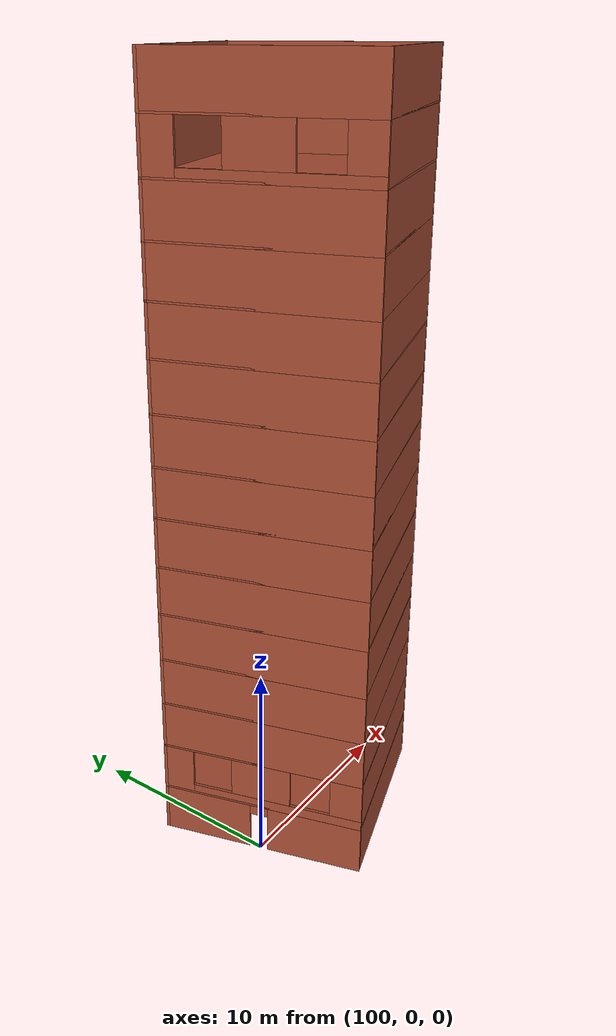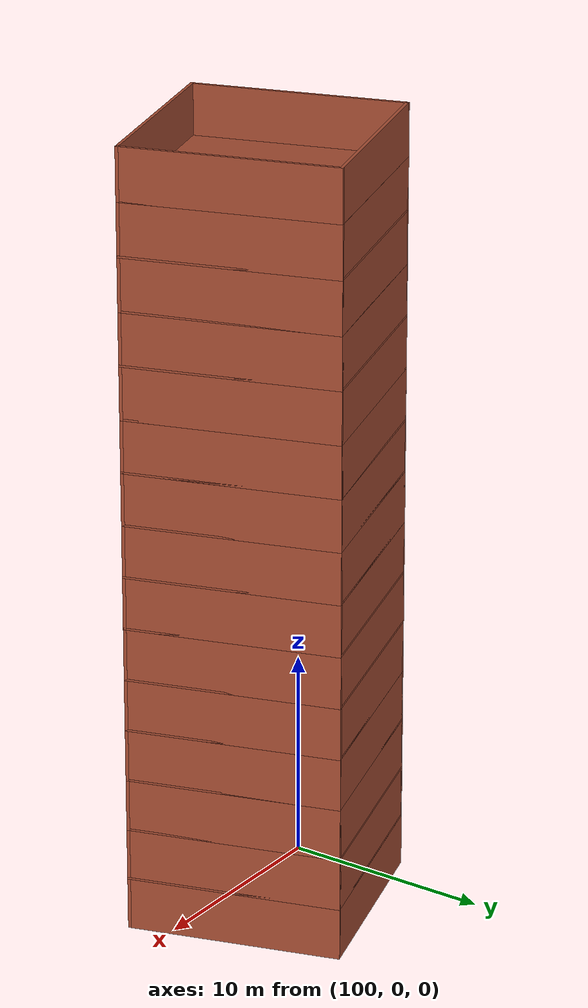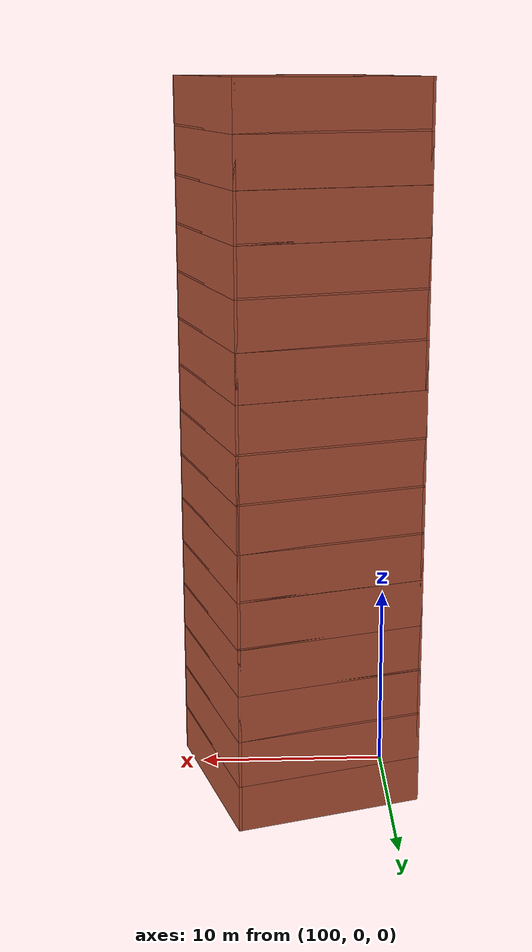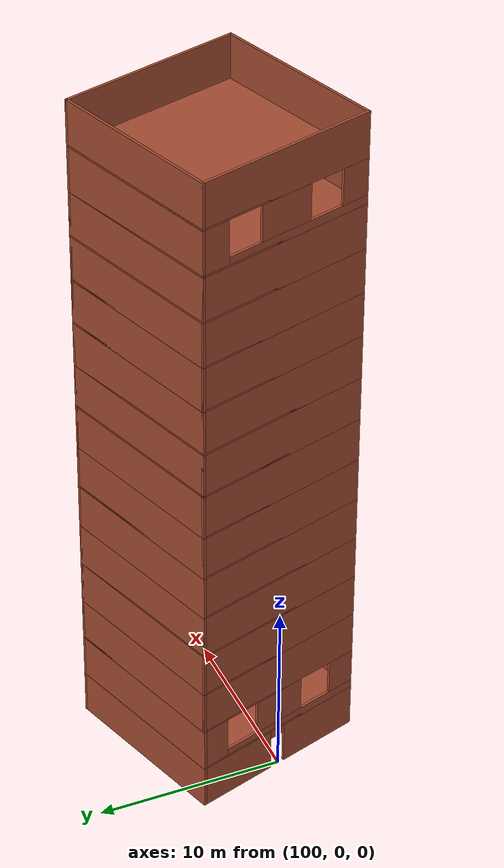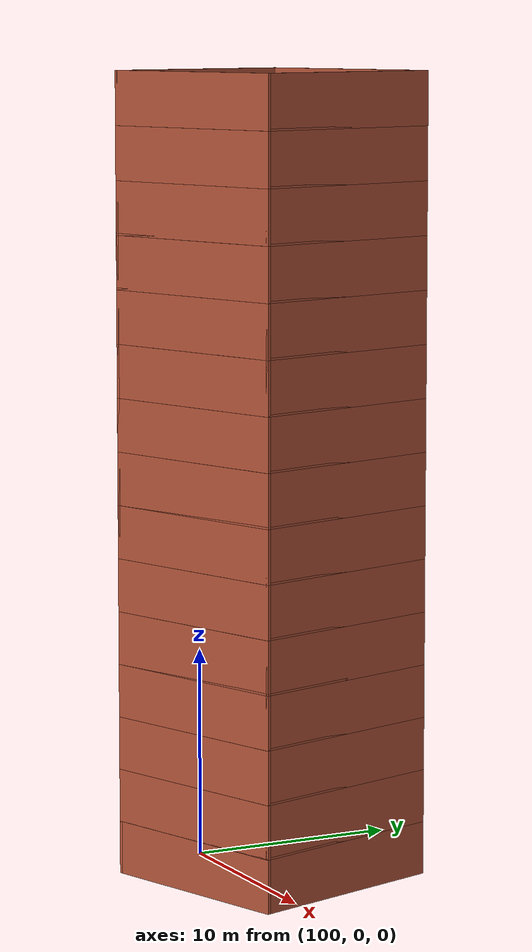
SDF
<?xml version='1.0'?>
<sdf version='1.7'>
  <model name='building_L14_w2x2_p10x5'>
    <pose>99.9625 0 0 0 0 0.3</pose>
    <link name='Floor_10'>
      <collision name='Floor_10_Collision'>
        <geometry>
          <box>
            <size>10 10.15 0.1</size>
          </box>
        </geometry>
        <pose>0 0 0.05 0 -0 0</pose>
      </collision>
      <visual name='Floor_10_Visual'>
        <pose>0 0 0.05 0 -0 0</pose>
        <geometry>
          <box>
            <size>10 10.15 0.1</size>
          </box>
        </geometry>
        <material>
          <script>
            <uri>file://media/materials/scripts/gazebo.material</uri>
            <name>Gazebo/Bricks</name>
          </script>
          <ambient>1 1 1 1</ambient>
        </material>
        <meta>
          <layer>2</layer>
        </meta>
      </visual>
      <pose>4.9625 0 5 0 -0 0</pose>
    </link>
    <link name='Floor_11'>
      <collision name='Floor_11_Collision'>
        <geometry>
          <box>
            <size>10 10.15 0.1</size>
          </box>
        </geometry>
        <pose>0 0 0.05 0 -0 0</pose>
      </collision>
      <visual name='Floor_11_Visual'>
        <pose>0 0 0.05 0 -0 0</pose>
        <geometry>
          <box>
            <size>10 10.15 0.1</size>
          </box>
        </geometry>
        <material>
          <script>
            <uri>file://media/materials/scripts/gazebo.material</uri>
            <name>Gazebo/Bricks</name>
          </script>
          <ambient>1 1 1 1</ambient>
        </material>
        <meta>
          <layer>3</layer>
        </meta>
      </visual>
      <pose>4.9625 0 7.5 0 -0 0</pose>
    </link>
    <link name='Floor_12'>
      <collision name='Floor_12_Collision'>
        <geometry>
          <box>
            <size>10 10.15 0.1</size>
          </box>
        </geometry>
        <pose>0 0 0.05 0 -0 0</pose>
      </collision>
      <visual name='Floor_12_Visual'>
        <pose>0 0 0.05 0 -0 0</pose>
        <geometry>
          <box>
            <size>10 10.15 0.1</size>
          </box>
        </geometry>
        <material>
          <script>
            <uri>file://media/materials/scripts/gazebo.material</uri>
            <name>Gazebo/Bricks</name>
          </script>
          <ambient>1 1 1 1</ambient>
        </material>
        <meta>
          <layer>4</layer>
        </meta>
      </visual>
      <pose>4.9625 0 10 0 -0 0</pose>
    </link>
    <link name='Floor_13'>
      <collision name='Floor_13_Collision'>
        <geometry>
          <box>
            <size>10 10.15 0.1</size>
          </box>
        </geometry>
        <pose>0 0 0.05 0 -0 0</pose>
      </collision>
      <visual name='Floor_13_Visual'>
        <pose>0 0 0.05 0 -0 0</pose>
        <geometry>
          <box>
            <size>10 10.15 0.1</size>
          </box>
        </geometry>
        <material>
          <script>
            <uri>file://media/materials/scripts/gazebo.material</uri>
            <name>Gazebo/Bricks</name>
          </script>
          <ambient>1 1 1 1</ambient>
        </material>
        <meta>
          <layer>5</layer>
        </meta>
      </visual>
      <pose>4.9625 0 12.5 0 -0 0</pose>
    </link>
    <link name='Floor_14'>
      <collision name='Floor_14_Collision'>
        <geometry>
          <box>
            <size>10 10.15 0.1</size>
          </box>
        </geometry>
        <pose>0 0 0.05 0 -0 0</pose>
      </collision>
      <visual name='Floor_14_Visual'>
        <pose>0 0 0.05 0 -0 0</pose>
        <geometry>
          <box>
            <size>10 10.15 0.1</size>
          </box>
        </geometry>
        <material>
          <script>
            <uri>file://media/materials/scripts/gazebo.material</uri>
            <name>Gazebo/Bricks</name>
          </script>
          <ambient>1 1 1 1</ambient>
        </material>
        <meta>
          <layer>6</layer>
        </meta>
      </visual>
      <pose>4.9625 0 15 0 -0 0</pose>
    </link>
    <link name='Floor_15'>
      <collision name='Floor_15_Collision'>
        <geometry>
          <box>
            <size>10 10.15 0.1</size>
          </box>
        </geometry>
        <pose>0 0 0.05 0 -0 0</pose>
      </collision>
      <visual name='Floor_15_Visual'>
        <pose>0 0 0.05 0 -0 0</pose>
        <geometry>
          <box>
            <size>10 10.15 0.1</size>
          </box>
        </geometry>
        <material>
          <script>
            <uri>file://media/materials/scripts/gazebo.material</uri>
            <name>Gazebo/Bricks</name>
          </script>
          <ambient>1 1 1 1</ambient>
        </material>
        <meta>
          <layer>7</layer>
        </meta>
      </visual>
      <pose>4.9625 0 17.5 0 -0 0</pose>
    </link>
    <link name='Floor_16'>
      <collision name='Floor_16_Collision'>
        <geometry>
          <box>
            <size>10 10.15 0.1</size>
          </box>
        </geometry>
        <pose>0 0 0.05 0 -0 0</pose>
      </collision>
      <visual name='Floor_16_Visual'>
        <pose>0 0 0.05 0 -0 0</pose>
        <geometry>
          <box>
            <size>10 10.15 0.1</size>
          </box>
        </geometry>
        <material>
          <script>
            <uri>file://media/materials/scripts/gazebo.material</uri>
            <name>Gazebo/Bricks</name>
          </script>
          <ambient>1 1 1 1</ambient>
        </material>
        <meta>
          <layer>8</layer>
        </meta>
      </visual>
      <pose>4.9625 0 20 0 -0 0</pose>
    </link>
    <link name='Floor_17'>
      <collision name='Floor_17_Collision'>
        <geometry>
          <box>
            <size>10 10.15 0.1</size>
          </box>
        </geometry>
        <pose>0 0 0.05 0 -0 0</pose>
      </collision>
      <visual name='Floor_17_Visual'>
        <pose>0 0 0.05 0 -0 0</pose>
        <geometry>
          <box>
            <size>10 10.15 0.1</size>
          </box>
        </geometry>
        <material>
          <script>
            <uri>file://media/materials/scripts/gazebo.material</uri>
            <name>Gazebo/Bricks</name>
          </script>
          <ambient>1 1 1 1</ambient>
        </material>
        <meta>
          <layer>9</layer>
        </meta>
      </visual>
      <pose>4.9625 0 22.5 0 -0 0</pose>
    </link>
    <link name='Floor_18'>
      <collision name='Floor_18_Collision'>
        <geometry>
          <box>
            <size>10 10.15 0.1</size>
          </box>
        </geometry>
        <pose>0 0 0.05 0 -0 0</pose>
      </collision>
      <visual name='Floor_18_Visual'>
        <pose>0 0 0.05 0 -0 0</pose>
        <geometry>
          <box>
            <size>10 10.15 0.1</size>
          </box>
        </geometry>
        <material>
          <script>
            <uri>file://media/materials/scripts/gazebo.material</uri>
            <name>Gazebo/Bricks</name>
          </script>
          <ambient>1 1 1 1</ambient>
        </material>
        <meta>
          <layer>10</layer>
        </meta>
      </visual>
      <pose>4.9625 0 25 0 -0 0</pose>
    </link>
    <link name='Floor_19'>
      <collision name='Floor_19_Collision'>
        <geometry>
          <box>
            <size>10 10.15 0.1</size>
          </box>
        </geometry>
        <pose>0 0 0.05 0 -0 0</pose>
      </collision>
      <visual name='Floor_19_Visual'>
        <pose>0 0 0.05 0 -0 0</pose>
        <geometry>
          <box>
            <size>10 10.15 0.1</size>
          </box>
        </geometry>
        <material>
          <script>
            <uri>file://media/materials/scripts/gazebo.material</uri>
            <name>Gazebo/Bricks</name>
          </script>
          <ambient>1 1 1 1</ambient>
        </material>
        <meta>
          <layer>11</layer>
        </meta>
      </visual>
      <pose>4.9625 0 27.5 0 -0 0</pose>
    </link>
    <link name='Floor_20'>
      <collision name='Floor_20_Collision'>
        <geometry>
          <box>
            <size>10 10.15 0.1</size>
          </box>
        </geometry>
        <pose>0 0 0.05 0 -0 0</pose>
      </collision>
      <visual name='Floor_20_Visual'>
        <pose>0 0 0.05 0 -0 0</pose>
        <geometry>
          <box>
            <size>10 10.15 0.1</size>
          </box>
        </geometry>
        <material>
          <script>
            <uri>file://media/materials/scripts/gazebo.material</uri>
            <name>Gazebo/Bricks</name>
          </script>
          <ambient>1 1 1 1</ambient>
        </material>
        <meta>
          <layer>12</layer>
        </meta>
      </visual>
      <pose>4.9625 0 30 0 -0 0</pose>
    </link>
    <link name='Floor_21'>
      <collision name='Floor_21_Collision'>
        <geometry>
          <box>
            <size>10 10.15 0.1</size>
          </box>
        </geometry>
        <pose>0 0 0.05 0 -0 0</pose>
      </collision>
      <visual name='Floor_21_Visual'>
        <pose>0 0 0.05 0 -0 0</pose>
        <geometry>
          <box>
            <size>10 10.15 0.1</size>
          </box>
        </geometry>
        <material>
          <script>
            <uri>file://media/materials/scripts/gazebo.material</uri>
            <name>Gazebo/Bricks</name>
          </script>
          <ambient>1 1 1 1</ambient>
        </material>
        <meta>
          <layer>13</layer>
        </meta>
      </visual>
      <pose>4.9625 0 32.5 0 -0 0</pose>
    </link>
    <link name='Floor_22'>
      <collision name='Floor_22_Collision'>
        <geometry>
          <box>
            <size>10 10.15 0.1</size>
          </box>
        </geometry>
        <pose>0 0 0.05 0 -0 0</pose>
      </collision>
      <visual name='Floor_22_Visual'>
        <pose>0 0 0.05 0 -0 0</pose>
        <geometry>
          <box>
            <size>10 10.15 0.1</size>
          </box>
        </geometry>
        <material>
          <script>
            <uri>file://media/materials/scripts/gazebo.material</uri>
            <name>Gazebo/Bricks</name>
          </script>
          <ambient>1 1 1 1</ambient>
        </material>
        <meta>
          <layer>14</layer>
        </meta>
      </visual>
      <pose>4.9625 0 35 0 -0 0</pose>
    </link>
    <link name='Floor_7'>
      <collision name='Floor_7_Collision'>
        <geometry>
          <box>
            <size>10 10.15 0.1</size>
          </box>
        </geometry>
        <pose>0 0 0.05 0 -0 0</pose>
      </collision>
      <visual name='Floor_7_Visual'>
        <pose>0 0 0.05 0 -0 0</pose>
        <geometry>
          <box>
            <size>10 10.15 0.1</size>
          </box>
        </geometry>
        <material>
          <script>
            <uri>file://media/materials/scripts/gazebo.material</uri>
            <name>Gazebo/Bricks</name>
          </script>
          <ambient>1 1 1 1</ambient>
        </material>
        <meta>
          <layer>1</layer>
        </meta>
      </visual>
      <pose>4.9625 0 2.5 0 -0 0</pose>
    </link>
    <link name='Wall_0'>
      <pose>0.037499 0 0 0 -0 -1.5708</pose>
      <visual name='Wall_0_Visual_0'>
        <pose>-2.80582 0 1.25 0 -0 0</pose>
        <geometry>
          <box>
            <size>4.53835 0.15 2.5</size>
          </box>
        </geometry>
        <material>
          <script>
            <uri>file://media/materials/scripts/gazebo.material</uri>
            <name>Gazebo/Bricks</name>
          </script>
          <ambient>1 1 1 1</ambient>
        </material>
        <meta>
          <layer>0</layer>
        </meta>
      </visual>
      <collision name='Wall_0_Collision_0'>
        <geometry>
          <box>
            <size>4.53835 0.15 2.5</size>
          </box>
        </geometry>
        <pose>-2.80582 0 1.25 0 -0 0</pose>
      </collision>
      <visual name='Wall_0_Visual_1'>
        <pose>2.71918 0 1.25 0 -0 0</pose>
        <geometry>
          <box>
            <size>4.71165 0.15 2.5</size>
          </box>
        </geometry>
        <material>
          <script>
            <uri>file://media/materials/scripts/gazebo.material</uri>
            <name>Gazebo/Bricks</name>
          </script>
          <ambient>1 1 1 1</ambient>
        </material>
        <meta>
          <layer>0</layer>
        </meta>
      </visual>
      <collision name='Wall_0_Collision_1'>
        <geometry>
          <box>
            <size>4.71165 0.15 2.5</size>
          </box>
        </geometry>
        <pose>2.71918 0 1.25 0 -0 0</pose>
      </collision>
      <visual name='Wall_0_Visual_2'>
        <pose>-0.086646 0 2.25 0 -0 0</pose>
        <geometry>
          <box>
            <size>0.9 0.15 0.5</size>
          </box>
        </geometry>
        <material>
          <script>
            <uri>file://media/materials/scripts/gazebo.material</uri>
            <name>Gazebo/Bricks</name>
          </script>
          <ambient>1 1 1 1</ambient>
        </material>
        <meta>
          <layer>0</layer>
        </meta>
      </visual>
      <collision name='Wall_0_Collision_2'>
        <geometry>
          <box>
            <size>0.9 0.15 0.5</size>
          </box>
        </geometry>
        <pose>-0.086646 0 2.25 0 -0 0</pose>
      </collision>
    </link>
    <link name='Wall_10'>
      <collision name='Wall_10_Collision'>
        <geometry>
          <box>
            <size>10 0.15 2.5</size>
          </box>
        </geometry>
        <pose>0 0 1.25 0 -0 0</pose>
      </collision>
      <visual name='Wall_10_Visual'>
        <pose>0 0 1.25 0 -0 0</pose>
        <geometry>
          <box>
            <size>10 0.15 2.5</size>
          </box>
        </geometry>
        <material>
          <script>
            <uri>file://media/materials/scripts/gazebo.material</uri>
            <name>Gazebo/Bricks</name>
          </script>
          <ambient>1 1 1 1</ambient>
        </material>
        <meta>
          <layer>0</layer>
        </meta>
      </visual>
      <pose>4.9625 -5 0 0 -0 0</pose>
    </link>
    <link name='Wall_100'>
      <collision name='Wall_100_Collision'>
        <geometry>
          <box>
            <size>10.15 0.15 2.5</size>
          </box>
        </geometry>
        <pose>0 0 1.25 0 -0 0</pose>
      </collision>
      <visual name='Wall_100_Visual'>
        <pose>0 0 1.25 0 -0 0</pose>
        <geometry>
          <box>
            <size>10.15 0.15 2.5</size>
          </box>
        </geometry>
        <material>
          <script>
            <uri>file://media/materials/scripts/gazebo.material</uri>
            <name>Gazebo/Bricks</name>
          </script>
          <ambient>1 1 1 1</ambient>
        </material>
        <meta>
          <layer>14</layer>
        </meta>
      </visual>
      <pose>0.037499 0 35 0 -0 -1.5708</pose>
    </link>
    <link name='Wall_101'>
      <collision name='Wall_101_Collision'>
        <geometry>
          <box>
            <size>10 0.15 2.5</size>
          </box>
        </geometry>
        <pose>0 0 1.25 0 -0 0</pose>
      </collision>
      <visual name='Wall_101_Visual'>
        <pose>0 0 1.25 0 -0 0</pose>
        <geometry>
          <box>
            <size>10 0.15 2.5</size>
          </box>
        </geometry>
        <material>
          <script>
            <uri>file://media/materials/scripts/gazebo.material</uri>
            <name>Gazebo/Bricks</name>
          </script>
          <ambient>1 1 1 1</ambient>
        </material>
        <meta>
          <layer>14</layer>
        </meta>
      </visual>
      <pose>4.9625 5 35 0 -0 0</pose>
    </link>
    <link name='Wall_102'>
      <collision name='Wall_102_Collision'>
        <geometry>
          <box>
            <size>10.15 0.15 2.5</size>
          </box>
        </geometry>
        <pose>0 0 1.25 0 -0 0</pose>
      </collision>
      <visual name='Wall_102_Visual'>
        <pose>0 0 1.25 0 -0 0</pose>
        <geometry>
          <box>
            <size>10.15 0.15 2.5</size>
          </box>
        </geometry>
        <material>
          <script>
            <uri>file://media/materials/scripts/gazebo.material</uri>
            <name>Gazebo/Bricks</name>
          </script>
          <ambient>1 1 1 1</ambient>
        </material>
        <meta>
          <layer>14</layer>
        </meta>
      </visual>
      <pose>9.8875 0 35 0 -0 -1.5708</pose>
    </link>
    <link name='Wall_103'>
      <collision name='Wall_103_Collision'>
        <geometry>
          <box>
            <size>10 0.15 2.5</size>
          </box>
        </geometry>
        <pose>0 0 1.25 0 -0 0</pose>
      </collision>
      <visual name='Wall_103_Visual'>
        <pose>0 0 1.25 0 -0 0</pose>
        <geometry>
          <box>
            <size>10 0.15 2.5</size>
          </box>
        </geometry>
        <material>
          <script>
            <uri>file://media/materials/scripts/gazebo.material</uri>
            <name>Gazebo/Bricks</name>
          </script>
          <ambient>1 1 1 1</ambient>
        </material>
        <meta>
          <layer>14</layer>
        </meta>
      </visual>
      <pose>4.9625 -5 35 0 -0 0</pose>
    </link>
    <link name='Wall_40'>
      <pose>0.037499 0 2.5 0 -0 -1.5708</pose>
      <visual name='Wall_40_Visual_0'>
        <pose>-4.2875 0 1.25 0 -0 0</pose>
        <geometry>
          <box>
            <size>1.575 0.15 2.5</size>
          </box>
        </geometry>
        <material>
          <script>
            <uri>file://media/materials/scripts/gazebo.material</uri>
            <name>Gazebo/Bricks</name>
          </script>
          <ambient>1 1 1 1</ambient>
        </material>
        <meta>
          <layer>1</layer>
        </meta>
      </visual>
      <collision name='Wall_40_Collision_0'>
        <geometry>
          <box>
            <size>1.575 0.15 2.5</size>
          </box>
        </geometry>
        <pose>-4.2875 0 1.25 0 -0 0</pose>
      </collision>
      <visual name='Wall_40_Visual_1'>
        <pose>0.7875 0 0.25 0 -0 0</pose>
        <geometry>
          <box>
            <size>8.575 0.15 0.5</size>
          </box>
        </geometry>
        <material>
          <script>
            <uri>file://media/materials/scripts/gazebo.material</uri>
            <name>Gazebo/Bricks</name>
          </script>
          <ambient>1 1 1 1</ambient>
        </material>
        <meta>
          <layer>1</layer>
        </meta>
      </visual>
      <collision name='Wall_40_Collision_1'>
        <geometry>
          <box>
            <size>8.575 0.15 0.5</size>
          </box>
        </geometry>
        <pose>0.7875 0 0.25 0 -0 0</pose>
      </collision>
      <visual name='Wall_40_Visual_2'>
        <pose>0 0 1.5 0 -0 0</pose>
        <geometry>
          <box>
            <size>3 0.15 2</size>
          </box>
        </geometry>
        <material>
          <script>
            <uri>file://media/materials/scripts/gazebo.material</uri>
            <name>Gazebo/Bricks</name>
          </script>
          <ambient>1 1 1 1</ambient>
        </material>
        <meta>
          <layer>1</layer>
        </meta>
      </visual>
      <collision name='Wall_40_Collision_2'>
        <geometry>
          <box>
            <size>3 0.15 2</size>
          </box>
        </geometry>
        <pose>0 0 1.5 0 -0 0</pose>
      </collision>
      <visual name='Wall_40_Visual_3'>
        <pose>4.2875 0 1.5 0 -0 0</pose>
        <geometry>
          <box>
            <size>1.575 0.15 2</size>
          </box>
        </geometry>
        <material>
          <script>
            <uri>file://media/materials/scripts/gazebo.material</uri>
            <name>Gazebo/Bricks</name>
          </script>
          <ambient>1 1 1 1</ambient>
        </material>
        <meta>
          <layer>1</layer>
        </meta>
      </visual>
      <collision name='Wall_40_Collision_3'>
        <geometry>
          <box>
            <size>1.575 0.15 2</size>
          </box>
        </geometry>
        <pose>4.2875 0 1.5 0 -0 0</pose>
      </collision>
    </link>
    <link name='Wall_41'>
      <collision name='Wall_41_Collision'>
        <geometry>
          <box>
            <size>10 0.15 2.5</size>
          </box>
        </geometry>
        <pose>0 0 1.25 0 -0 0</pose>
      </collision>
      <visual name='Wall_41_Visual'>
        <pose>0 0 1.25 0 -0 0</pose>
        <geometry>
          <box>
            <size>10 0.15 2.5</size>
          </box>
        </geometry>
        <material>
          <script>
            <uri>file://media/materials/scripts/gazebo.material</uri>
            <name>Gazebo/Bricks</name>
          </script>
          <ambient>1 1 1 1</ambient>
        </material>
        <meta>
          <layer>1</layer>
        </meta>
      </visual>
      <pose>4.9625 5 2.5 0 -0 0</pose>
    </link>
    <link name='Wall_42'>
      <collision name='Wall_42_Collision'>
        <geometry>
          <box>
            <size>10.15 0.15 2.5</size>
          </box>
        </geometry>
        <pose>0 0 1.25 0 -0 0</pose>
      </collision>
      <visual name='Wall_42_Visual'>
        <pose>0 0 1.25 0 -0 0</pose>
        <geometry>
          <box>
            <size>10.15 0.15 2.5</size>
          </box>
        </geometry>
        <material>
          <script>
            <uri>file://media/materials/scripts/gazebo.material</uri>
            <name>Gazebo/Bricks</name>
          </script>
          <ambient>1 1 1 1</ambient>
        </material>
        <meta>
          <layer>1</layer>
        </meta>
      </visual>
      <pose>9.8875 0 2.5 0 -0 -1.5708</pose>
    </link>
    <link name='Wall_43'>
      <collision name='Wall_43_Collision'>
        <geometry>
          <box>
            <size>10 0.15 2.5</size>
          </box>
        </geometry>
        <pose>0 0 1.25 0 -0 0</pose>
      </collision>
      <visual name='Wall_43_Visual'>
        <pose>0 0 1.25 0 -0 0</pose>
        <geometry>
          <box>
            <size>10 0.15 2.5</size>
          </box>
        </geometry>
        <material>
          <script>
            <uri>file://media/materials/scripts/gazebo.material</uri>
            <name>Gazebo/Bricks</name>
          </script>
          <ambient>1 1 1 1</ambient>
        </material>
        <meta>
          <layer>1</layer>
        </meta>
      </visual>
      <pose>4.9625 -5 2.5 0 -0 0</pose>
    </link>
    <link name='Wall_52'>
      <collision name='Wall_52_Collision'>
        <geometry>
          <box>
            <size>10.15 0.15 2.5</size>
          </box>
        </geometry>
        <pose>0 0 1.25 0 -0 0</pose>
      </collision>
      <visual name='Wall_52_Visual'>
        <pose>0 0 1.25 0 -0 0</pose>
        <geometry>
          <box>
            <size>10.15 0.15 2.5</size>
          </box>
        </geometry>
        <material>
          <script>
            <uri>file://media/materials/scripts/gazebo.material</uri>
            <name>Gazebo/Bricks</name>
          </script>
          <ambient>1 1 1 1</ambient>
        </material>
        <meta>
          <layer>2</layer>
        </meta>
      </visual>
      <pose>0.037499 0 5 0 -0 -1.5708</pose>
    </link>
    <link name='Wall_53'>
      <collision name='Wall_53_Collision'>
        <geometry>
          <box>
            <size>10 0.15 2.5</size>
          </box>
        </geometry>
        <pose>0 0 1.25 0 -0 0</pose>
      </collision>
      <visual name='Wall_53_Visual'>
        <pose>0 0 1.25 0 -0 0</pose>
        <geometry>
          <box>
            <size>10 0.15 2.5</size>
          </box>
        </geometry>
        <material>
          <script>
            <uri>file://media/materials/scripts/gazebo.material</uri>
            <name>Gazebo/Bricks</name>
          </script>
          <ambient>1 1 1 1</ambient>
        </material>
        <meta>
          <layer>2</layer>
        </meta>
      </visual>
      <pose>4.9625 5 5 0 -0 0</pose>
    </link>
    <link name='Wall_54'>
      <collision name='Wall_54_Collision'>
        <geometry>
          <box>
            <size>10.15 0.15 2.5</size>
          </box>
        </geometry>
        <pose>0 0 1.25 0 -0 0</pose>
      </collision>
      <visual name='Wall_54_Visual'>
        <pose>0 0 1.25 0 -0 0</pose>
        <geometry>
          <box>
            <size>10.15 0.15 2.5</size>
          </box>
        </geometry>
        <material>
          <script>
            <uri>file://media/materials/scripts/gazebo.material</uri>
            <name>Gazebo/Bricks</name>
          </script>
          <ambient>1 1 1 1</ambient>
        </material>
        <meta>
          <layer>2</layer>
        </meta>
      </visual>
      <pose>9.8875 0 5 0 -0 -1.5708</pose>
    </link>
    <link name='Wall_55'>
      <collision name='Wall_55_Collision'>
        <geometry>
          <box>
            <size>10 0.15 2.5</size>
          </box>
        </geometry>
        <pose>0 0 1.25 0 -0 0</pose>
      </collision>
      <visual name='Wall_55_Visual'>
        <pose>0 0 1.25 0 -0 0</pose>
        <geometry>
          <box>
            <size>10 0.15 2.5</size>
          </box>
        </geometry>
        <material>
          <script>
            <uri>file://media/materials/scripts/gazebo.material</uri>
            <name>Gazebo/Bricks</name>
          </script>
          <ambient>1 1 1 1</ambient>
        </material>
        <meta>
          <layer>2</layer>
        </meta>
      </visual>
      <pose>4.9625 -5 5 0 -0 0</pose>
    </link>
    <link name='Wall_56'>
      <collision name='Wall_56_Collision'>
        <geometry>
          <box>
            <size>10.15 0.15 2.5</size>
          </box>
        </geometry>
        <pose>0 0 1.25 0 -0 0</pose>
      </collision>
      <visual name='Wall_56_Visual'>
        <pose>0 0 1.25 0 -0 0</pose>
        <geometry>
          <box>
            <size>10.15 0.15 2.5</size>
          </box>
        </geometry>
        <material>
          <script>
            <uri>file://media/materials/scripts/gazebo.material</uri>
            <name>Gazebo/Bricks</name>
          </script>
          <ambient>1 1 1 1</ambient>
        </material>
        <meta>
          <layer>3</layer>
        </meta>
      </visual>
      <pose>0.037499 0 7.5 0 -0 -1.5708</pose>
    </link>
    <link name='Wall_57'>
      <collision name='Wall_57_Collision'>
        <geometry>
          <box>
            <size>10 0.15 2.5</size>
          </box>
        </geometry>
        <pose>0 0 1.25 0 -0 0</pose>
      </collision>
      <visual name='Wall_57_Visual'>
        <pose>0 0 1.25 0 -0 0</pose>
        <geometry>
          <box>
            <size>10 0.15 2.5</size>
          </box>
        </geometry>
        <material>
          <script>
            <uri>file://media/materials/scripts/gazebo.material</uri>
            <name>Gazebo/Bricks</name>
          </script>
          <ambient>1 1 1 1</ambient>
        </material>
        <meta>
          <layer>3</layer>
        </meta>
      </visual>
      <pose>4.9625 5 7.5 0 -0 0</pose>
    </link>
    <link name='Wall_58'>
      <collision name='Wall_58_Collision'>
        <geometry>
          <box>
            <size>10.15 0.15 2.5</size>
          </box>
        </geometry>
        <pose>0 0 1.25 0 -0 0</pose>
      </collision>
      <visual name='Wall_58_Visual'>
        <pose>0 0 1.25 0 -0 0</pose>
        <geometry>
          <box>
            <size>10.15 0.15 2.5</size>
          </box>
        </geometry>
        <material>
          <script>
            <uri>file://media/materials/scripts/gazebo.material</uri>
            <name>Gazebo/Bricks</name>
          </script>
          <ambient>1 1 1 1</ambient>
        </material>
        <meta>
          <layer>3</layer>
        </meta>
      </visual>
      <pose>9.8875 0 7.5 0 -0 -1.5708</pose>
    </link>
    <link name='Wall_59'>
      <collision name='Wall_59_Collision'>
        <geometry>
          <box>
            <size>10 0.15 2.5</size>
          </box>
        </geometry>
        <pose>0 0 1.25 0 -0 0</pose>
      </collision>
      <visual name='Wall_59_Visual'>
        <pose>0 0 1.25 0 -0 0</pose>
        <geometry>
          <box>
            <size>10 0.15 2.5</size>
          </box>
        </geometry>
        <material>
          <script>
            <uri>file://media/materials/scripts/gazebo.material</uri>
            <name>Gazebo/Bricks</name>
          </script>
          <ambient>1 1 1 1</ambient>
        </material>
        <meta>
          <layer>3</layer>
        </meta>
      </visual>
      <pose>4.9625 -5 7.5 0 -0 0</pose>
    </link>
    <link name='Wall_60'>
      <collision name='Wall_60_Collision'>
        <geometry>
          <box>
            <size>10.15 0.15 2.5</size>
          </box>
        </geometry>
        <pose>0 0 1.25 0 -0 0</pose>
      </collision>
      <visual name='Wall_60_Visual'>
        <pose>0 0 1.25 0 -0 0</pose>
        <geometry>
          <box>
            <size>10.15 0.15 2.5</size>
          </box>
        </geometry>
        <material>
          <script>
            <uri>file://media/materials/scripts/gazebo.material</uri>
            <name>Gazebo/Bricks</name>
          </script>
          <ambient>1 1 1 1</ambient>
        </material>
        <meta>
          <layer>4</layer>
        </meta>
      </visual>
      <pose>0.037499 0 10 0 -0 -1.5708</pose>
    </link>
    <link name='Wall_61'>
      <collision name='Wall_61_Collision'>
        <geometry>
          <box>
            <size>10 0.15 2.5</size>
          </box>
        </geometry>
        <pose>0 0 1.25 0 -0 0</pose>
      </collision>
      <visual name='Wall_61_Visual'>
        <pose>0 0 1.25 0 -0 0</pose>
        <geometry>
          <box>
            <size>10 0.15 2.5</size>
          </box>
        </geometry>
        <material>
          <script>
            <uri>file://media/materials/scripts/gazebo.material</uri>
            <name>Gazebo/Bricks</name>
          </script>
          <ambient>1 1 1 1</ambient>
        </material>
        <meta>
          <layer>4</layer>
        </meta>
      </visual>
      <pose>4.9625 5 10 0 -0 0</pose>
    </link>
    <link name='Wall_62'>
      <collision name='Wall_62_Collision'>
        <geometry>
          <box>
            <size>10.15 0.15 2.5</size>
          </box>
        </geometry>
        <pose>0 0 1.25 0 -0 0</pose>
      </collision>
      <visual name='Wall_62_Visual'>
        <pose>0 0 1.25 0 -0 0</pose>
        <geometry>
          <box>
            <size>10.15 0.15 2.5</size>
          </box>
        </geometry>
        <material>
          <script>
            <uri>file://media/materials/scripts/gazebo.material</uri>
            <name>Gazebo/Bricks</name>
          </script>
          <ambient>1 1 1 1</ambient>
        </material>
        <meta>
          <layer>4</layer>
        </meta>
      </visual>
      <pose>9.8875 0 10 0 -0 -1.5708</pose>
    </link>
    <link name='Wall_63'>
      <collision name='Wall_63_Collision'>
        <geometry>
          <box>
            <size>10 0.15 2.5</size>
          </box>
        </geometry>
        <pose>0 0 1.25 0 -0 0</pose>
      </collision>
      <visual name='Wall_63_Visual'>
        <pose>0 0 1.25 0 -0 0</pose>
        <geometry>
          <box>
            <size>10 0.15 2.5</size>
          </box>
        </geometry>
        <material>
          <script>
            <uri>file://media/materials/scripts/gazebo.material</uri>
            <name>Gazebo/Bricks</name>
          </script>
          <ambient>1 1 1 1</ambient>
        </material>
        <meta>
          <layer>4</layer>
        </meta>
      </visual>
      <pose>4.9625 -5 10 0 -0 0</pose>
    </link>
    <link name='Wall_64'>
      <collision name='Wall_64_Collision'>
        <geometry>
          <box>
            <size>10.15 0.15 2.5</size>
          </box>
        </geometry>
        <pose>0 0 1.25 0 -0 0</pose>
      </collision>
      <visual name='Wall_64_Visual'>
        <pose>0 0 1.25 0 -0 0</pose>
        <geometry>
          <box>
            <size>10.15 0.15 2.5</size>
          </box>
        </geometry>
        <material>
          <script>
            <uri>file://media/materials/scripts/gazebo.material</uri>
            <name>Gazebo/Bricks</name>
          </script>
          <ambient>1 1 1 1</ambient>
        </material>
        <meta>
          <layer>5</layer>
        </meta>
      </visual>
      <pose>0.037499 0 12.5 0 -0 -1.5708</pose>
    </link>
    <link name='Wall_65'>
      <collision name='Wall_65_Collision'>
        <geometry>
          <box>
            <size>10 0.15 2.5</size>
          </box>
        </geometry>
        <pose>0 0 1.25 0 -0 0</pose>
      </collision>
      <visual name='Wall_65_Visual'>
        <pose>0 0 1.25 0 -0 0</pose>
        <geometry>
          <box>
            <size>10 0.15 2.5</size>
          </box>
        </geometry>
        <material>
          <script>
            <uri>file://media/materials/scripts/gazebo.material</uri>
            <name>Gazebo/Bricks</name>
          </script>
          <ambient>1 1 1 1</ambient>
        </material>
        <meta>
          <layer>5</layer>
        </meta>
      </visual>
      <pose>4.9625 5 12.5 0 -0 0</pose>
    </link>
    <link name='Wall_66'>
      <collision name='Wall_66_Collision'>
        <geometry>
          <box>
            <size>10.15 0.15 2.5</size>
          </box>
        </geometry>
        <pose>0 0 1.25 0 -0 0</pose>
      </collision>
      <visual name='Wall_66_Visual'>
        <pose>0 0 1.25 0 -0 0</pose>
        <geometry>
          <box>
            <size>10.15 0.15 2.5</size>
          </box>
        </geometry>
        <material>
          <script>
            <uri>file://media/materials/scripts/gazebo.material</uri>
            <name>Gazebo/Bricks</name>
          </script>
          <ambient>1 1 1 1</ambient>
        </material>
        <meta>
          <layer>5</layer>
        </meta>
      </visual>
      <pose>9.8875 0 12.5 0 -0 -1.5708</pose>
    </link>
    <link name='Wall_67'>
      <collision name='Wall_67_Collision'>
        <geometry>
          <box>
            <size>10 0.15 2.5</size>
          </box>
        </geometry>
        <pose>0 0 1.25 0 -0 0</pose>
      </collision>
      <visual name='Wall_67_Visual'>
        <pose>0 0 1.25 0 -0 0</pose>
        <geometry>
          <box>
            <size>10 0.15 2.5</size>
          </box>
        </geometry>
        <material>
          <script>
            <uri>file://media/materials/scripts/gazebo.material</uri>
            <name>Gazebo/Bricks</name>
          </script>
          <ambient>1 1 1 1</ambient>
        </material>
        <meta>
          <layer>5</layer>
        </meta>
      </visual>
      <pose>4.9625 -5 12.5 0 -0 0</pose>
    </link>
    <link name='Wall_68'>
      <collision name='Wall_68_Collision'>
        <geometry>
          <box>
            <size>10.15 0.15 2.5</size>
          </box>
        </geometry>
        <pose>0 0 1.25 0 -0 0</pose>
      </collision>
      <visual name='Wall_68_Visual'>
        <pose>0 0 1.25 0 -0 0</pose>
        <geometry>
          <box>
            <size>10.15 0.15 2.5</size>
          </box>
        </geometry>
        <material>
          <script>
            <uri>file://media/materials/scripts/gazebo.material</uri>
            <name>Gazebo/Bricks</name>
          </script>
          <ambient>1 1 1 1</ambient>
        </material>
        <meta>
          <layer>6</layer>
        </meta>
      </visual>
      <pose>0.037499 0 15 0 -0 -1.5708</pose>
    </link>
    <link name='Wall_69'>
      <collision name='Wall_69_Collision'>
        <geometry>
          <box>
            <size>10 0.15 2.5</size>
          </box>
        </geometry>
        <pose>0 0 1.25 0 -0 0</pose>
      </collision>
      <visual name='Wall_69_Visual'>
        <pose>0 0 1.25 0 -0 0</pose>
        <geometry>
          <box>
            <size>10 0.15 2.5</size>
          </box>
        </geometry>
        <material>
          <script>
            <uri>file://media/materials/scripts/gazebo.material</uri>
            <name>Gazebo/Bricks</name>
          </script>
          <ambient>1 1 1 1</ambient>
        </material>
        <meta>
          <layer>6</layer>
        </meta>
      </visual>
      <pose>4.9625 5 15 0 -0 0</pose>
    </link>
    <link name='Wall_7'>
      <collision name='Wall_7_Collision'>
        <geometry>
          <box>
            <size>10 0.15 2.5</size>
          </box>
        </geometry>
        <pose>0 0 1.25 0 -0 0</pose>
      </collision>
      <visual name='Wall_7_Visual'>
        <pose>0 0 1.25 0 -0 0</pose>
        <geometry>
          <box>
            <size>10 0.15 2.5</size>
          </box>
        </geometry>
        <material>
          <script>
            <uri>file://media/materials/scripts/gazebo.material</uri>
            <name>Gazebo/Bricks</name>
          </script>
          <ambient>1 1 1 1</ambient>
        </material>
        <meta>
          <layer>0</layer>
        </meta>
      </visual>
      <pose>4.9625 5 0 0 -0 0</pose>
    </link>
    <link name='Wall_70'>
      <collision name='Wall_70_Collision'>
        <geometry>
          <box>
            <size>10.15 0.15 2.5</size>
          </box>
        </geometry>
        <pose>0 0 1.25 0 -0 0</pose>
      </collision>
      <visual name='Wall_70_Visual'>
        <pose>0 0 1.25 0 -0 0</pose>
        <geometry>
          <box>
            <size>10.15 0.15 2.5</size>
          </box>
        </geometry>
        <material>
          <script>
            <uri>file://media/materials/scripts/gazebo.material</uri>
            <name>Gazebo/Bricks</name>
          </script>
          <ambient>1 1 1 1</ambient>
        </material>
        <meta>
          <layer>6</layer>
        </meta>
      </visual>
      <pose>9.8875 0 15 0 -0 -1.5708</pose>
    </link>
    <link name='Wall_71'>
      <collision name='Wall_71_Collision'>
        <geometry>
          <box>
            <size>10 0.15 2.5</size>
          </box>
        </geometry>
        <pose>0 0 1.25 0 -0 0</pose>
      </collision>
      <visual name='Wall_71_Visual'>
        <pose>0 0 1.25 0 -0 0</pose>
        <geometry>
          <box>
            <size>10 0.15 2.5</size>
          </box>
        </geometry>
        <material>
          <script>
            <uri>file://media/materials/scripts/gazebo.material</uri>
            <name>Gazebo/Bricks</name>
          </script>
          <ambient>1 1 1 1</ambient>
        </material>
        <meta>
          <layer>6</layer>
        </meta>
      </visual>
      <pose>4.9625 -5 15 0 -0 0</pose>
    </link>
    <link name='Wall_72'>
      <collision name='Wall_72_Collision'>
        <geometry>
          <box>
            <size>10.15 0.15 2.5</size>
          </box>
        </geometry>
        <pose>0 0 1.25 0 -0 0</pose>
      </collision>
      <visual name='Wall_72_Visual'>
        <pose>0 0 1.25 0 -0 0</pose>
        <geometry>
          <box>
            <size>10.15 0.15 2.5</size>
          </box>
        </geometry>
        <material>
          <script>
            <uri>file://media/materials/scripts/gazebo.material</uri>
            <name>Gazebo/Bricks</name>
          </script>
          <ambient>1 1 1 1</ambient>
        </material>
        <meta>
          <layer>7</layer>
        </meta>
      </visual>
      <pose>0.037499 0 17.5 0 -0 -1.5708</pose>
    </link>
    <link name='Wall_73'>
      <collision name='Wall_73_Collision'>
        <geometry>
          <box>
            <size>10 0.15 2.5</size>
          </box>
        </geometry>
        <pose>0 0 1.25 0 -0 0</pose>
      </collision>
      <visual name='Wall_73_Visual'>
        <pose>0 0 1.25 0 -0 0</pose>
        <geometry>
          <box>
            <size>10 0.15 2.5</size>
          </box>
        </geometry>
        <material>
          <script>
            <uri>file://media/materials/scripts/gazebo.material</uri>
            <name>Gazebo/Bricks</name>
          </script>
          <ambient>1 1 1 1</ambient>
        </material>
        <meta>
          <layer>7</layer>
        </meta>
      </visual>
      <pose>4.9625 5 17.5 0 -0 0</pose>
    </link>
    <link name='Wall_74'>
      <collision name='Wall_74_Collision'>
        <geometry>
          <box>
            <size>10.15 0.15 2.5</size>
          </box>
        </geometry>
        <pose>0 0 1.25 0 -0 0</pose>
      </collision>
      <visual name='Wall_74_Visual'>
        <pose>0 0 1.25 0 -0 0</pose>
        <geometry>
          <box>
            <size>10.15 0.15 2.5</size>
          </box>
        </geometry>
        <material>
          <script>
            <uri>file://media/materials/scripts/gazebo.material</uri>
            <name>Gazebo/Bricks</name>
          </script>
          <ambient>1 1 1 1</ambient>
        </material>
        <meta>
          <layer>7</layer>
        </meta>
      </visual>
      <pose>9.8875 0 17.5 0 -0 -1.5708</pose>
    </link>
    <link name='Wall_75'>
      <collision name='Wall_75_Collision'>
        <geometry>
          <box>
            <size>10 0.15 2.5</size>
          </box>
        </geometry>
        <pose>0 0 1.25 0 -0 0</pose>
      </collision>
      <visual name='Wall_75_Visual'>
        <pose>0 0 1.25 0 -0 0</pose>
        <geometry>
          <box>
            <size>10 0.15 2.5</size>
          </box>
        </geometry>
        <material>
          <script>
            <uri>file://media/materials/scripts/gazebo.material</uri>
            <name>Gazebo/Bricks</name>
          </script>
          <ambient>1 1 1 1</ambient>
        </material>
        <meta>
          <layer>7</layer>
        </meta>
      </visual>
      <pose>4.9625 -5 17.5 0 -0 0</pose>
    </link>
    <link name='Wall_76'>
      <collision name='Wall_76_Collision'>
        <geometry>
          <box>
            <size>10.15 0.15 2.5</size>
          </box>
        </geometry>
        <pose>0 0 1.25 0 -0 0</pose>
      </collision>
      <visual name='Wall_76_Visual'>
        <pose>0 0 1.25 0 -0 0</pose>
        <geometry>
          <box>
            <size>10.15 0.15 2.5</size>
          </box>
        </geometry>
        <material>
          <script>
            <uri>file://media/materials/scripts/gazebo.material</uri>
            <name>Gazebo/Bricks</name>
          </script>
          <ambient>1 1 1 1</ambient>
        </material>
        <meta>
          <layer>8</layer>
        </meta>
      </visual>
      <pose>0.037499 0 20 0 -0 -1.5708</pose>
    </link>
    <link name='Wall_77'>
      <collision name='Wall_77_Collision'>
        <geometry>
          <box>
            <size>10 0.15 2.5</size>
          </box>
        </geometry>
        <pose>0 0 1.25 0 -0 0</pose>
      </collision>
      <visual name='Wall_77_Visual'>
        <pose>0 0 1.25 0 -0 0</pose>
        <geometry>
          <box>
            <size>10 0.15 2.5</size>
          </box>
        </geometry>
        <material>
          <script>
            <uri>file://media/materials/scripts/gazebo.material</uri>
            <name>Gazebo/Bricks</name>
          </script>
          <ambient>1 1 1 1</ambient>
        </material>
        <meta>
          <layer>8</layer>
        </meta>
      </visual>
      <pose>4.9625 5 20 0 -0 0</pose>
    </link>
    <link name='Wall_78'>
      <collision name='Wall_78_Collision'>
        <geometry>
          <box>
            <size>10.15 0.15 2.5</size>
          </box>
        </geometry>
        <pose>0 0 1.25 0 -0 0</pose>
      </collision>
      <visual name='Wall_78_Visual'>
        <pose>0 0 1.25 0 -0 0</pose>
        <geometry>
          <box>
            <size>10.15 0.15 2.5</size>
          </box>
        </geometry>
        <material>
          <script>
            <uri>file://media/materials/scripts/gazebo.material</uri>
            <name>Gazebo/Bricks</name>
          </script>
          <ambient>1 1 1 1</ambient>
        </material>
        <meta>
          <layer>8</layer>
        </meta>
      </visual>
      <pose>9.8875 0 20 0 -0 -1.5708</pose>
    </link>
    <link name='Wall_79'>
      <collision name='Wall_79_Collision'>
        <geometry>
          <box>
            <size>10 0.15 2.5</size>
          </box>
        </geometry>
        <pose>0 0 1.25 0 -0 0</pose>
      </collision>
      <visual name='Wall_79_Visual'>
        <pose>0 0 1.25 0 -0 0</pose>
        <geometry>
          <box>
            <size>10 0.15 2.5</size>
          </box>
        </geometry>
        <material>
          <script>
            <uri>file://media/materials/scripts/gazebo.material</uri>
            <name>Gazebo/Bricks</name>
          </script>
          <ambient>1 1 1 1</ambient>
        </material>
        <meta>
          <layer>8</layer>
        </meta>
      </visual>
      <pose>4.9625 -5 20 0 -0 0</pose>
    </link>
    <link name='Wall_8'>
      <collision name='Wall_8_Collision'>
        <geometry>
          <box>
            <size>10.15 0.15 2.5</size>
          </box>
        </geometry>
        <pose>0 0 1.25 0 -0 0</pose>
      </collision>
      <visual name='Wall_8_Visual'>
        <pose>0 0 1.25 0 -0 0</pose>
        <geometry>
          <box>
            <size>10.15 0.15 2.5</size>
          </box>
        </geometry>
        <material>
          <script>
            <uri>file://media/materials/scripts/gazebo.material</uri>
            <name>Gazebo/Bricks</name>
          </script>
          <ambient>1 1 1 1</ambient>
        </material>
        <meta>
          <layer>0</layer>
        </meta>
      </visual>
      <pose>9.8875 0 0 0 -0 -1.5708</pose>
    </link>
    <link name='Wall_80'>
      <collision name='Wall_80_Collision'>
        <geometry>
          <box>
            <size>10.15 0.15 2.5</size>
          </box>
        </geometry>
        <pose>0 0 1.25 0 -0 0</pose>
      </collision>
      <visual name='Wall_80_Visual'>
        <pose>0 0 1.25 0 -0 0</pose>
        <geometry>
          <box>
            <size>10.15 0.15 2.5</size>
          </box>
        </geometry>
        <material>
          <script>
            <uri>file://media/materials/scripts/gazebo.material</uri>
            <name>Gazebo/Bricks</name>
          </script>
          <ambient>1 1 1 1</ambient>
        </material>
        <meta>
          <layer>9</layer>
        </meta>
      </visual>
      <pose>0.037499 0 22.5 0 -0 -1.5708</pose>
    </link>
    <link name='Wall_81'>
      <collision name='Wall_81_Collision'>
        <geometry>
          <box>
            <size>10 0.15 2.5</size>
          </box>
        </geometry>
        <pose>0 0 1.25 0 -0 0</pose>
      </collision>
      <visual name='Wall_81_Visual'>
        <pose>0 0 1.25 0 -0 0</pose>
        <geometry>
          <box>
            <size>10 0.15 2.5</size>
          </box>
        </geometry>
        <material>
          <script>
            <uri>file://media/materials/scripts/gazebo.material</uri>
            <name>Gazebo/Bricks</name>
          </script>
          <ambient>1 1 1 1</ambient>
        </material>
        <meta>
          <layer>9</layer>
        </meta>
      </visual>
      <pose>4.9625 5 22.5 0 -0 0</pose>
    </link>
    <link name='Wall_82'>
      <collision name='Wall_82_Collision'>
        <geometry>
          <box>
            <size>10.15 0.15 2.5</size>
          </box>
        </geometry>
        <pose>0 0 1.25 0 -0 0</pose>
      </collision>
      <visual name='Wall_82_Visual'>
        <pose>0 0 1.25 0 -0 0</pose>
        <geometry>
          <box>
            <size>10.15 0.15 2.5</size>
          </box>
        </geometry>
        <material>
          <script>
            <uri>file://media/materials/scripts/gazebo.material</uri>
            <name>Gazebo/Bricks</name>
          </script>
          <ambient>1 1 1 1</ambient>
        </material>
        <meta>
          <layer>9</layer>
        </meta>
      </visual>
      <pose>9.8875 0 22.5 0 -0 -1.5708</pose>
    </link>
    <link name='Wall_83'>
      <collision name='Wall_83_Collision'>
        <geometry>
          <box>
            <size>10 0.15 2.5</size>
          </box>
        </geometry>
        <pose>0 0 1.25 0 -0 0</pose>
      </collision>
      <visual name='Wall_83_Visual'>
        <pose>0 0 1.25 0 -0 0</pose>
        <geometry>
          <box>
            <size>10 0.15 2.5</size>
          </box>
        </geometry>
        <material>
          <script>
            <uri>file://media/materials/scripts/gazebo.material</uri>
            <name>Gazebo/Bricks</name>
          </script>
          <ambient>1 1 1 1</ambient>
        </material>
        <meta>
          <layer>9</layer>
        </meta>
      </visual>
      <pose>4.9625 -5 22.5 0 -0 0</pose>
    </link>
    <link name='Wall_84'>
      <collision name='Wall_84_Collision'>
        <geometry>
          <box>
            <size>10.15 0.15 2.5</size>
          </box>
        </geometry>
        <pose>0 0 1.25 0 -0 0</pose>
      </collision>
      <visual name='Wall_84_Visual'>
        <pose>0 0 1.25 0 -0 0</pose>
        <geometry>
          <box>
            <size>10.15 0.15 2.5</size>
          </box>
        </geometry>
        <material>
          <script>
            <uri>file://media/materials/scripts/gazebo.material</uri>
            <name>Gazebo/Bricks</name>
          </script>
          <ambient>1 1 1 1</ambient>
        </material>
        <meta>
          <layer>10</layer>
        </meta>
      </visual>
      <pose>0.037499 0 25 0 -0 -1.5708</pose>
    </link>
    <link name='Wall_85'>
      <collision name='Wall_85_Collision'>
        <geometry>
          <box>
            <size>10 0.15 2.5</size>
          </box>
        </geometry>
        <pose>0 0 1.25 0 -0 0</pose>
      </collision>
      <visual name='Wall_85_Visual'>
        <pose>0 0 1.25 0 -0 0</pose>
        <geometry>
          <box>
            <size>10 0.15 2.5</size>
          </box>
        </geometry>
        <material>
          <script>
            <uri>file://media/materials/scripts/gazebo.material</uri>
            <name>Gazebo/Bricks</name>
          </script>
          <ambient>1 1 1 1</ambient>
        </material>
        <meta>
          <layer>10</layer>
        </meta>
      </visual>
      <pose>4.9625 5 25 0 -0 0</pose>
    </link>
    <link name='Wall_86'>
      <collision name='Wall_86_Collision'>
        <geometry>
          <box>
            <size>10.15 0.15 2.5</size>
          </box>
        </geometry>
        <pose>0 0 1.25 0 -0 0</pose>
      </collision>
      <visual name='Wall_86_Visual'>
        <pose>0 0 1.25 0 -0 0</pose>
        <geometry>
          <box>
            <size>10.15 0.15 2.5</size>
          </box>
        </geometry>
        <material>
          <script>
            <uri>file://media/materials/scripts/gazebo.material</uri>
            <name>Gazebo/Bricks</name>
          </script>
          <ambient>1 1 1 1</ambient>
        </material>
        <meta>
          <layer>10</layer>
        </meta>
      </visual>
      <pose>9.8875 0 25 0 -0 -1.5708</pose>
    </link>
    <link name='Wall_87'>
      <collision name='Wall_87_Collision'>
        <geometry>
          <box>
            <size>10 0.15 2.5</size>
          </box>
        </geometry>
        <pose>0 0 1.25 0 -0 0</pose>
      </collision>
      <visual name='Wall_87_Visual'>
        <pose>0 0 1.25 0 -0 0</pose>
        <geometry>
          <box>
            <size>10 0.15 2.5</size>
          </box>
        </geometry>
        <material>
          <script>
            <uri>file://media/materials/scripts/gazebo.material</uri>
            <name>Gazebo/Bricks</name>
          </script>
          <ambient>1 1 1 1</ambient>
        </material>
        <meta>
          <layer>10</layer>
        </meta>
      </visual>
      <pose>4.9625 -5 25 0 -0 0</pose>
    </link>
    <link name='Wall_88'>
      <collision name='Wall_88_Collision'>
        <geometry>
          <box>
            <size>10.15 0.15 2.5</size>
          </box>
        </geometry>
        <pose>0 0 1.25 0 -0 0</pose>
      </collision>
      <visual name='Wall_88_Visual'>
        <pose>0 0 1.25 0 -0 0</pose>
        <geometry>
          <box>
            <size>10.15 0.15 2.5</size>
          </box>
        </geometry>
        <material>
          <script>
            <uri>file://media/materials/scripts/gazebo.material</uri>
            <name>Gazebo/Bricks</name>
          </script>
          <ambient>1 1 1 1</ambient>
        </material>
        <meta>
          <layer>11</layer>
        </meta>
      </visual>
      <pose>0.037499 0 27.5 0 -0 -1.5708</pose>
    </link>
    <link name='Wall_89'>
      <collision name='Wall_89_Collision'>
        <geometry>
          <box>
            <size>10 0.15 2.5</size>
          </box>
        </geometry>
        <pose>0 0 1.25 0 -0 0</pose>
      </collision>
      <visual name='Wall_89_Visual'>
        <pose>0 0 1.25 0 -0 0</pose>
        <geometry>
          <box>
            <size>10 0.15 2.5</size>
          </box>
        </geometry>
        <material>
          <script>
            <uri>file://media/materials/scripts/gazebo.material</uri>
            <name>Gazebo/Bricks</name>
          </script>
          <ambient>1 1 1 1</ambient>
        </material>
        <meta>
          <layer>11</layer>
        </meta>
      </visual>
      <pose>4.9625 5 27.5 0 -0 0</pose>
    </link>
    <link name='Wall_90'>
      <collision name='Wall_90_Collision'>
        <geometry>
          <box>
            <size>10.15 0.15 2.5</size>
          </box>
        </geometry>
        <pose>0 0 1.25 0 -0 0</pose>
      </collision>
      <visual name='Wall_90_Visual'>
        <pose>0 0 1.25 0 -0 0</pose>
        <geometry>
          <box>
            <size>10.15 0.15 2.5</size>
          </box>
        </geometry>
        <material>
          <script>
            <uri>file://media/materials/scripts/gazebo.material</uri>
            <name>Gazebo/Bricks</name>
          </script>
          <ambient>1 1 1 1</ambient>
        </material>
        <meta>
          <layer>11</layer>
        </meta>
      </visual>
      <pose>9.8875 0 27.5 0 -0 -1.5708</pose>
    </link>
    <link name='Wall_91'>
      <collision name='Wall_91_Collision'>
        <geometry>
          <box>
            <size>10 0.15 2.5</size>
          </box>
        </geometry>
        <pose>0 0 1.25 0 -0 0</pose>
      </collision>
      <visual name='Wall_91_Visual'>
        <pose>0 0 1.25 0 -0 0</pose>
        <geometry>
          <box>
            <size>10 0.15 2.5</size>
          </box>
        </geometry>
        <material>
          <script>
            <uri>file://media/materials/scripts/gazebo.material</uri>
            <name>Gazebo/Bricks</name>
          </script>
          <ambient>1 1 1 1</ambient>
        </material>
        <meta>
          <layer>11</layer>
        </meta>
      </visual>
      <pose>4.9625 -5 27.5 0 -0 0</pose>
    </link>
    <link name='Wall_92'>
      <collision name='Wall_92_Collision'>
        <geometry>
          <box>
            <size>10.15 0.15 2.5</size>
          </box>
        </geometry>
        <pose>0 0 1.25 0 -0 0</pose>
      </collision>
      <visual name='Wall_92_Visual'>
        <pose>0 0 1.25 0 -0 0</pose>
        <geometry>
          <box>
            <size>10.15 0.15 2.5</size>
          </box>
        </geometry>
        <material>
          <script>
            <uri>file://media/materials/scripts/gazebo.material</uri>
            <name>Gazebo/Bricks</name>
          </script>
          <ambient>1 1 1 1</ambient>
        </material>
        <meta>
          <layer>12</layer>
        </meta>
      </visual>
      <pose>0.037499 0 30 0 -0 -1.5708</pose>
    </link>
    <link name='Wall_93'>
      <collision name='Wall_93_Collision'>
        <geometry>
          <box>
            <size>10 0.15 2.5</size>
          </box>
        </geometry>
        <pose>0 0 1.25 0 -0 0</pose>
      </collision>
      <visual name='Wall_93_Visual'>
        <pose>0 0 1.25 0 -0 0</pose>
        <geometry>
          <box>
            <size>10 0.15 2.5</size>
          </box>
        </geometry>
        <material>
          <script>
            <uri>file://media/materials/scripts/gazebo.material</uri>
            <name>Gazebo/Bricks</name>
          </script>
          <ambient>1 1 1 1</ambient>
        </material>
        <meta>
          <layer>12</layer>
        </meta>
      </visual>
      <pose>4.9625 5 30 0 -0 0</pose>
    </link>
    <link name='Wall_94'>
      <collision name='Wall_94_Collision'>
        <geometry>
          <box>
            <size>10.15 0.15 2.5</size>
          </box>
        </geometry>
        <pose>0 0 1.25 0 -0 0</pose>
      </collision>
      <visual name='Wall_94_Visual'>
        <pose>0 0 1.25 0 -0 0</pose>
        <geometry>
          <box>
            <size>10.15 0.15 2.5</size>
          </box>
        </geometry>
        <material>
          <script>
            <uri>file://media/materials/scripts/gazebo.material</uri>
            <name>Gazebo/Bricks</name>
          </script>
          <ambient>1 1 1 1</ambient>
        </material>
        <meta>
          <layer>12</layer>
        </meta>
      </visual>
      <pose>9.8875 0 30 0 -0 -1.5708</pose>
    </link>
    <link name='Wall_95'>
      <collision name='Wall_95_Collision'>
        <geometry>
          <box>
            <size>10 0.15 2.5</size>
          </box>
        </geometry>
        <pose>0 0 1.25 0 -0 0</pose>
      </collision>
      <visual name='Wall_95_Visual'>
        <pose>0 0 1.25 0 -0 0</pose>
        <geometry>
          <box>
            <size>10 0.15 2.5</size>
          </box>
        </geometry>
        <material>
          <script>
            <uri>file://media/materials/scripts/gazebo.material</uri>
            <name>Gazebo/Bricks</name>
          </script>
          <ambient>1 1 1 1</ambient>
        </material>
        <meta>
          <layer>12</layer>
        </meta>
      </visual>
      <pose>4.9625 -5 30 0 -0 0</pose>
    </link>
    <link name='Wall_96'>
      <pose>0.037499 0 32.5 0 -0 -1.5708</pose>
      <visual name='Wall_96_Visual_0'>
        <pose>-4.2875 0 1.25 0 -0 0</pose>
        <geometry>
          <box>
            <size>1.575 0.15 2.5</size>
          </box>
        </geometry>
        <material>
          <script>
            <uri>file://media/materials/scripts/gazebo.material</uri>
            <name>Gazebo/Bricks</name>
          </script>
          <ambient>1 1 1 1</ambient>
        </material>
        <meta>
          <layer>13</layer>
        </meta>
      </visual>
      <collision name='Wall_96_Collision_0'>
        <geometry>
          <box>
            <size>1.575 0.15 2.5</size>
          </box>
        </geometry>
        <pose>-4.2875 0 1.25 0 -0 0</pose>
      </collision>
      <visual name='Wall_96_Visual_1'>
        <pose>0.7875 0 0.25 0 -0 0</pose>
        <geometry>
          <box>
            <size>8.575 0.15 0.5</size>
          </box>
        </geometry>
        <material>
          <script>
            <uri>file://media/materials/scripts/gazebo.material</uri>
            <name>Gazebo/Bricks</name>
          </script>
          <ambient>1 1 1 1</ambient>
        </material>
        <meta>
          <layer>13</layer>
        </meta>
      </visual>
      <collision name='Wall_96_Collision_1'>
        <geometry>
          <box>
            <size>8.575 0.15 0.5</size>
          </box>
        </geometry>
        <pose>0.7875 0 0.25 0 -0 0</pose>
      </collision>
      <visual name='Wall_96_Visual_2'>
        <pose>0 0 1.5 0 -0 0</pose>
        <geometry>
          <box>
            <size>3 0.15 2</size>
          </box>
        </geometry>
        <material>
          <script>
            <uri>file://media/materials/scripts/gazebo.material</uri>
            <name>Gazebo/Bricks</name>
          </script>
          <ambient>1 1 1 1</ambient>
        </material>
        <meta>
          <layer>13</layer>
        </meta>
      </visual>
      <collision name='Wall_96_Collision_2'>
        <geometry>
          <box>
            <size>3 0.15 2</size>
          </box>
        </geometry>
        <pose>0 0 1.5 0 -0 0</pose>
      </collision>
      <visual name='Wall_96_Visual_3'>
        <pose>4.2875 0 1.5 0 -0 0</pose>
        <geometry>
          <box>
            <size>1.575 0.15 2</size>
          </box>
        </geometry>
        <material>
          <script>
            <uri>file://media/materials/scripts/gazebo.material</uri>
            <name>Gazebo/Bricks</name>
          </script>
          <ambient>1 1 1 1</ambient>
        </material>
        <meta>
          <layer>13</layer>
        </meta>
      </visual>
      <collision name='Wall_96_Collision_3'>
        <geometry>
          <box>
            <size>1.575 0.15 2</size>
          </box>
        </geometry>
        <pose>4.2875 0 1.5 0 -0 0</pose>
      </collision>
    </link>
    <link name='Wall_97'>
      <collision name='Wall_97_Collision'>
        <geometry>
          <box>
            <size>10 0.15 2.5</size>
          </box>
        </geometry>
        <pose>0 0 1.25 0 -0 0</pose>
      </collision>
      <visual name='Wall_97_Visual'>
        <pose>0 0 1.25 0 -0 0</pose>
        <geometry>
          <box>
            <size>10 0.15 2.5</size>
          </box>
        </geometry>
        <material>
          <script>
            <uri>file://media/materials/scripts/gazebo.material</uri>
            <name>Gazebo/Bricks</name>
          </script>
          <ambient>1 1 1 1</ambient>
        </material>
        <meta>
          <layer>13</layer>
        </meta>
      </visual>
      <pose>4.9625 5 32.5 0 -0 0</pose>
    </link>
    <link name='Wall_98'>
      <collision name='Wall_98_Collision'>
        <geometry>
          <box>
            <size>10.15 0.15 2.5</size>
          </box>
        </geometry>
        <pose>0 0 1.25 0 -0 0</pose>
      </collision>
      <visual name='Wall_98_Visual'>
        <pose>0 0 1.25 0 -0 0</pose>
        <geometry>
          <box>
            <size>10.15 0.15 2.5</size>
          </box>
        </geometry>
        <material>
          <script>
            <uri>file://media/materials/scripts/gazebo.material</uri>
            <name>Gazebo/Bricks</name>
          </script>
          <ambient>1 1 1 1</ambient>
        </material>
        <meta>
          <layer>13</layer>
        </meta>
      </visual>
      <pose>9.8875 0 32.5 0 -0 -1.5708</pose>
    </link>
    <link name='Wall_99'>
      <collision name='Wall_99_Collision'>
        <geometry>
          <box>
            <size>10 0.15 2.5</size>
          </box>
        </geometry>
        <pose>0 0 1.25 0 -0 0</pose>
      </collision>
      <visual name='Wall_99_Visual'>
        <pose>0 0 1.25 0 -0 0</pose>
        <geometry>
          <box>
            <size>10 0.15 2.5</size>
          </box>
        </geometry>
        <material>
          <script>
            <uri>file://media/materials/scripts/gazebo.material</uri>
            <name>Gazebo/Bricks</name>
          </script>
          <ambient>1 1 1 1</ambient>
        </material>
        <meta>
          <layer>13</layer>
        </meta>
      </visual>
      <pose>4.9625 -5 32.5 0 -0 0</pose>
    </link>
    <static>1</static>
  </model>
</sdf>
